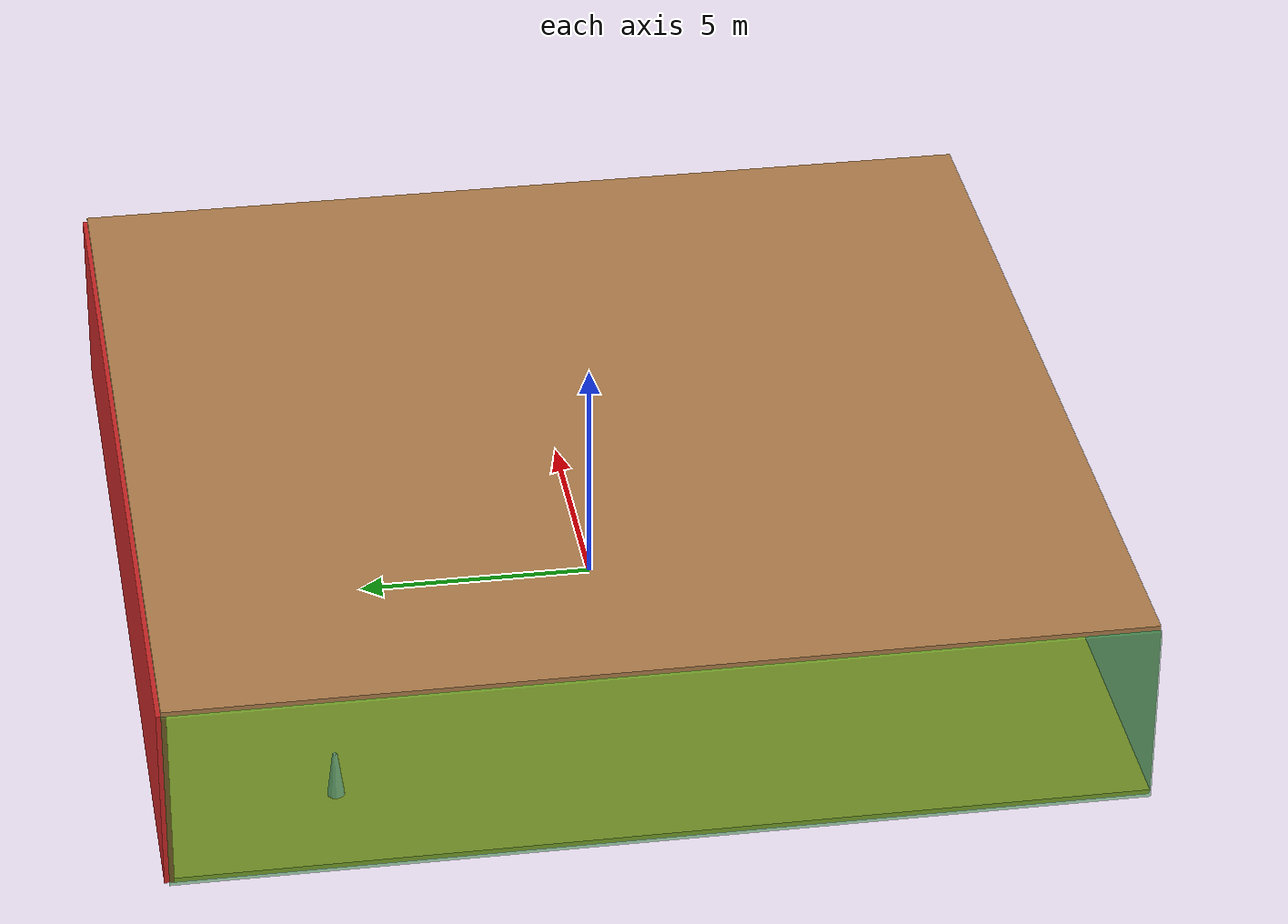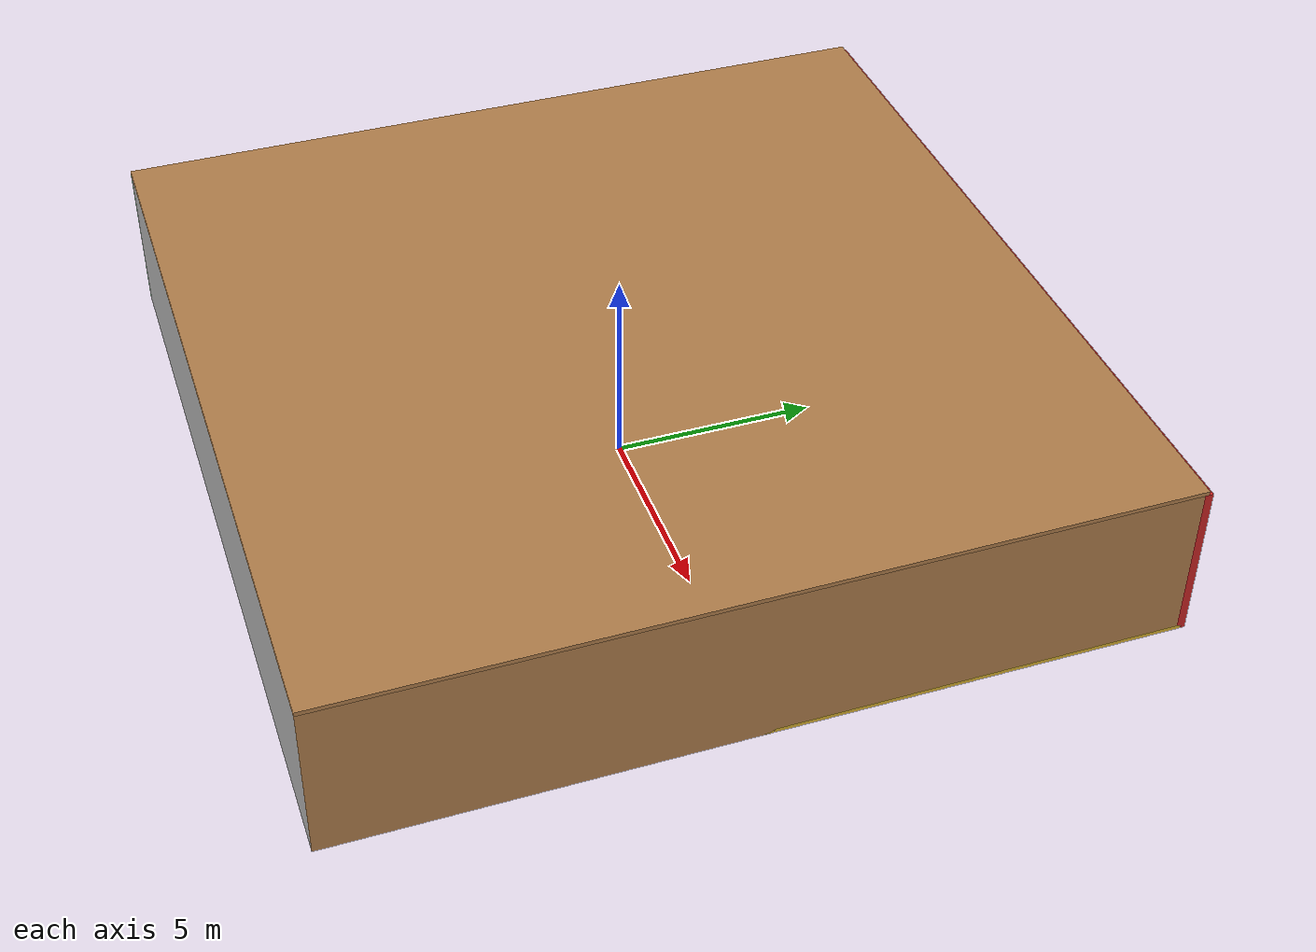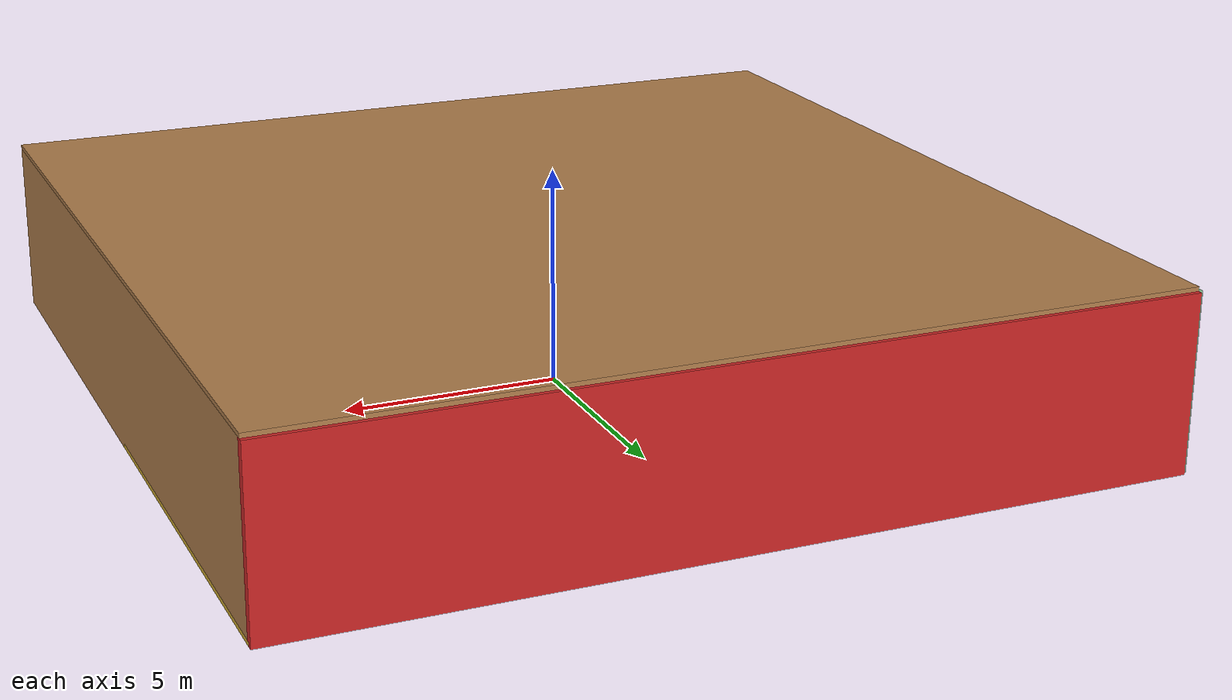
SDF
<sdf version="1.4">
 <world name="default">
  <physics type="ode">
   <max_step_size>0.001</max_step_size>
   <real_time_factor>1</real_time_factor>
   <real_time_update_rate>1000</real_time_update_rate>
   <gravity>0 0 -9.8</gravity>
  </physics>
  <scene><ambient>0.4 0.4 0.4 1</ambient><background>0.7 0.7 0.7 1</background><shadows>1</shadows></scene>
  <model name="Surrounding">
   <static>1</static>
   <link name="Ceiling">
    <collision name="Ceiling_Collision"><geometry><box><size>20 20 0.1</size></box></geometry></collision>
    <visual name="Ceiling_Visual">
     <geometry><box><size>20 20 0.1</size></box></geometry>
     <material>
      <script><uri>file://media/materials/scripts/gazebo.material</uri><name>Gazebo/Wood</name></script>
     </material>
    </visual>
    <pose>0 0 4.05 0 0 0</pose>
   </link>
   <link name="Wall_South">
    <collision name="Wall_South_Collision">
     <geometry><box><size>20 0 4</size></box></geometry>
     <pose>0 0 2 0 -0 0</pose>
    </collision>
    <visual name="Wall_South_Visual">
     <pose>0 0 2 0 -0 0</pose>
     <geometry><box><size>20 0 4</size></box></geometry>
     <material>
      <script><uri>file://media/materials/scripts/gazebo.material</uri><name>Gazebo/Pioneer2Body</name></script>
     </material>
    </visual>
    <velocity_decay><linear>0</linear><angular>0</angular></velocity_decay>
    <pose>0 -10 0 0 -0 0</pose>
   </link>
   <link name="Wall_East">
    <collision name="Wall_21_Collision">
     <geometry><box><size>20 0 4</size></box></geometry>
     <pose>0 0 2 0 -0 0</pose>
    </collision>
    <visual name="Wall_21_Visual">
     <pose>0 0 2 0 -0 0</pose>
     <geometry><box><size>20 0 4</size></box></geometry>
     <material>
      <script><uri>file://media/materials/scripts/gazebo.material</uri><name>Gazebo/WoodFloor</name></script>
     </material>
    </visual>
    <velocity_decay><linear>0</linear><angular>0</angular></velocity_decay>
    <pose>10 0 0 0 -0 1.5708</pose>
   </link>
   <link name="Wall_North">
    <collision name="Wall_22_Collision">
     <geometry><box><size>20 0.2 4</size></box></geometry>
     <pose>0 0 2 0 -0 0</pose>
    </collision>
    <visual name="Wall_22_Visual">
     <pose>0 0 2 0 -0 0</pose>
     <geometry><box><size>20 0.2 4</size></box></geometry>
     <material>
      <script><uri>file://media/materials/scripts/gazebo.material</uri><name>Gazebo/RedBright</name></script>
     </material>
    </visual>
    <velocity_decay><linear>0</linear><angular>0</angular></velocity_decay>
    <pose>0 10 0 0 -0 0</pose>
   </link>
   <link name="Wall_West">
    <collision name="Wall_23_Collision">
     <geometry><box><size>20 0.2 4</size></box></geometry>
     <pose>0 0 2 0 -0 0</pose>
    </collision>
    <visual name="Wall_23_Visual">
     <pose>0 0 2 0 -0 0</pose>
     <geometry><box><size>20 0.2 4</size></box></geometry>
     <material>
      <script><uri>file://media/materials/scripts/gazebo.material</uri><name>Gazebo/GreenTransparent</name></script>
     </material>
    </visual>
    <velocity_decay><linear>0</linear><angular>0</angular></velocity_decay>
    <pose>-10 0 0 0 0 -1.5708</pose>
   </link>
   <link name="Ground_link">
    <collision name="collision">
     <pose>0 0 .05 0 -0 0</pose>
     <geometry><box><size>20 20 0.1</size></box></geometry>
    </collision>
    <visual name="visual">
     <pose>0 0 .05 0 -0 0</pose>
     <geometry><box><size>20 20 0.1</size></box></geometry>
     <material>
      <script><uri>file://media/materials/scripts/gazebo.material</uri><name>Gazebo/Gold</name></script>
     </material>
    </visual>
   </link>
   <static>1</static>
  </model>
  <spherical_coordinates>
   <surface_model>EARTH_WGS84</surface_model>
   <latitude_deg>0</latitude_deg>
   <longitude_deg>0</longitude_deg>
   <elevation>0</elevation>
   <heading_deg>0</heading_deg>
  </spherical_coordinates>
  <light name="lightball_0" type="diffuse">
   <diffuse>0.8 0.8 0.8 1</diffuse>
   <specular>0.2 0.2 0.2 1</specular>
   <attenuation>
    <range>100</range>
    <constant>0.7</constant>
    <linear>0.01</linear>
    <quadratic>0.001</quadratic>
   </attenuation>
   <direction>-0.5 0.1 -0.9</direction>
   <pose>4.9550954184 8.12058212287 1.24291566424 0 0 0</pose>
  </light>
  <light name="lightball_1" type="diffuse">
   <diffuse>0.8 0.8 0.8 1</diffuse>
   <specular>0.2 0.2 0.2 1</specular>
   <attenuation>
    <range>100</range>
    <constant>0.7</constant>
    <linear>0.01</linear>
    <quadratic>0.001</quadratic>
   </attenuation>
   <direction>-0.5 0.1 -0.9</direction>
   <pose>2.53992460085 5.01521462465 2.97570484305 0 0 0</pose>
  </light>
  <light name="lightball_2" type="diffuse">
   <diffuse>0.8 0.8 0.8 1</diffuse>
   <specular>0.2 0.2 0.2 1</specular>
   <attenuation>
    <range>100</range>
    <constant>0.7</constant>
    <linear>0.01</linear>
    <quadratic>0.001</quadratic>
   </attenuation>
   <direction>-0.5 0.1 -0.9</direction>
   <pose>-2.1631805096 -5.25470564176 0.883649877927 0 0 0</pose>
  </light>
  <light name="lightball_3" type="diffuse">
   <diffuse>0.8 0.8 0.8 1</diffuse>
   <specular>0.2 0.2 0.2 1</specular>
   <attenuation>
    <range>100</range>
    <constant>0.7</constant>
    <linear>0.01</linear>
    <quadratic>0.001</quadratic>
   </attenuation>
   <direction>-0.5 0.1 -0.9</direction>
   <pose>7.36416459918 -8.20223295507 1.90510265628 0 0 0</pose>
  </light>
  <light name="lightball_4" type="diffuse">
   <diffuse>0.8 0.8 0.8 1</diffuse>
   <specular>0.2 0.2 0.2 1</specular>
   <attenuation>
    <range>100</range>
    <constant>0.7</constant>
    <linear>0.01</linear>
    <quadratic>0.001</quadratic>
   </attenuation>
   <direction>-0.5 0.1 -0.9</direction>
   <pose>2.98053149891 5.325347314 3.42462585647 0 0 0</pose>
  </light>
  <light name="lightball_5" type="diffuse">
   <diffuse>0.8 0.8 0.8 1</diffuse>
   <specular>0.2 0.2 0.2 1</specular>
   <attenuation>
    <range>100</range>
    <constant>0.7</constant>
    <linear>0.01</linear>
    <quadratic>0.001</quadratic>
   </attenuation>
   <direction>-0.5 0.1 -0.9</direction>
   <pose>-8.88449088006 2.02600604657 2.77535762636 0 0 0</pose>
  </light>
  <light name="lightball_6" type="diffuse">
   <diffuse>0.8 0.8 0.8 1</diffuse>
   <specular>0.2 0.2 0.2 1</specular>
   <attenuation>
    <range>100</range>
    <constant>0.7</constant>
    <linear>0.01</linear>
    <quadratic>0.001</quadratic>
   </attenuation>
   <direction>-0.5 0.1 -0.9</direction>
   <pose>-8.83272265955 -3.76583114684 1.89824032085 0 0 0</pose>
  </light>
  <light name="lightball_7" type="diffuse">
   <diffuse>0.8 0.8 0.8 1</diffuse>
   <specular>0.2 0.2 0.2 1</specular>
   <attenuation>
    <range>100</range>
    <constant>0.7</constant>
    <linear>0.01</linear>
    <quadratic>0.001</quadratic>
   </attenuation>
   <direction>-0.5 0.1 -0.9</direction>
   <pose>-9.97784107025 6.3333949011 2.10250004196 0 0 0</pose>
  </light>
  <light name="lightball_8" type="diffuse">
   <diffuse>0.8 0.8 0.8 1</diffuse>
   <specular>0.2 0.2 0.2 1</specular>
   <attenuation>
    <range>100</range>
    <constant>0.7</constant>
    <linear>0.01</linear>
    <quadratic>0.001</quadratic>
   </attenuation>
   <direction>-0.5 0.1 -0.9</direction>
   <pose>-7.60842574768 -4.81991868196 0.76841770776 0 0 0</pose>
  </light>
  <light name="lightball_9" type="diffuse">
   <diffuse>0.8 0.8 0.8 1</diffuse>
   <specular>0.2 0.2 0.2 1</specular>
   <attenuation>
    <range>100</range>
    <constant>0.7</constant>
    <linear>0.01</linear>
    <quadratic>0.001</quadratic>
   </attenuation>
   <direction>-0.5 0.1 -0.9</direction>
   <pose>8.18940050112 -9.69524910364 3.6951562915 0 0 0</pose>
  </light>
  <light name="lightball_10" type="diffuse">
   <diffuse>0.8 0.8 0.8 1</diffuse>
   <specular>0.2 0.2 0.2 1</specular>
   <attenuation>
    <range>100</range>
    <constant>0.7</constant>
    <linear>0.01</linear>
    <quadratic>0.001</quadratic>
   </attenuation>
   <direction>-0.5 0.1 -0.9</direction>
   <pose>5.02334268482 9.33531171669 2.0638772902 0 0 0</pose>
  </light>
  <light name="lightball_11" type="diffuse">
   <diffuse>0.8 0.8 0.8 1</diffuse>
   <specular>0.2 0.2 0.2 1</specular>
   <attenuation>
    <range>100</range>
    <constant>0.7</constant>
    <linear>0.01</linear>
    <quadratic>0.001</quadratic>
   </attenuation>
   <direction>-0.5 0.1 -0.9</direction>
   <pose>-7.35837130256 -2.35014700688 1.75411585762 0 0 0</pose>
  </light>
  <include>
   <uri>model://construction_cone</uri>
   <pose>-7.618088749 6.39954996463 0 0 0 1.54787445883</pose>
  </include>
  <include>
   <uri>model://construction_cone</uri>
   <pose>-3.94378031401 1.05327508056 0 0 0 0.570758279475</pose>
  </include>
  <include><uri>model://cabinet</uri><pose>-0.69077484363 -7.48202886058 0 0 0 2.94109271768</pose></include>
  <include><uri>model://table</uri><pose>-2.62354120613 -3.73893144332 0 0 0 2.4806132796</pose></include>
  <include><uri>model://cabinet</uri><pose>7.41051221849 -8.45326403794 0 0 0 0.921718768841</pose></include>
  <include>
   <uri>model://robocup_3Dsim_goal</uri>
   <pose>7.91959997101 -1.49700421659 0 0 0 0.805244012921</pose>
  </include>
  <include>
   <uri>model://robocup_3Dsim_goal</uri>
   <pose>7.28345605576 2.1580772414 0 0 0 2.45509218379</pose>
  </include>
  <include>
   <uri>model://construction_cone</uri>
   <pose>8.65815719076 4.52265470402 0 0 0 2.82023154954</pose>
  </include>
 </world>
</sdf>

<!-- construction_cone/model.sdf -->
<sdf version="1.5">
  <model name="Construction Cone">
    <link name="link">
      <collision name="collision">
        <geometry>
          <mesh>
            <scale>10 10 10</scale>
            <uri>file://isr-testbed/construction_cone/meshes/construction_cone.dae</uri>
          </mesh>
        </geometry>
      </collision>
      <visual name="visual">
        <geometry>
          <mesh>
            <scale>10 10 10</scale>
            <uri>file://isr-testbed/construction_cone/meshes/construction_cone.dae</uri>
          </mesh>
        </geometry>
      </visual>
    </link>
  </model>
</sdf>

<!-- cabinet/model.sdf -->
<sdf version="1.5">
  <model name="cabinet">
    <static>true</static>
    <link name="cabinet_bottom_plate">
      <inertial>
        <pose>0 0 -1 0 0 0</pose>
        <inertia>
          <ixx>2.050000</ixx>
          <ixy>0</ixy>
          <ixz>0</ixz>
          <iyy>2.050000</iyy>
          <iyz>0</iyz>
          <izz>2.050000</izz>
        </inertia>
        <mass>25.000000</mass>
      </inertial>
      <collision name="cabinet_bottom_plate_geom">
        <pose>0 0 0.010000 0 0 0</pose>
        <geometry>
          <box>
            <size>0.450000 0.450000 0.020000</size>
          </box>
        </geometry>
      </collision>
      <visual name="cabinet_bottom_plate_geom_visual">
        <pose>0 0 0.010000 0 0 0</pose>
        <geometry>
          <box>
            <size>0.450000 0.450000 0.020000</size>
          </box>
        </geometry>
        <material>
          <script>
            <uri>model://media/materials/scripts/gazebo.material</uri>
            <name>Gazebo/Wood</name>
          </script>
        </material>
      </visual>
      <collision name="cabinet_bottom_plate_geom_cabinet_back_plate">
        <pose>0.235000 0 0.510000 0 0 0</pose>
        <geometry>
          <box>
            <size>0.020000 0.450000 1.020000</size>
          </box>
        </geometry>
      </collision>
      <visual name="cabinet_bottom_plate_geom_cabinet_back_plate_visual">
        <pose>0.235000 0 0.510000 0 0 0</pose>
        <geometry>
          <box>
            <size>0.020000 0.450000 1.020000</size>
          </box>
        </geometry>
        <material>
          <script>
            <uri>model://media/materials/scripts/gazebo.material</uri>
            <name>Gazebo/Wood</name>
          </script>
        </material>
      </visual>
      <collision name="cabinet_bottom_plate_geom_cabinet_left_plate">
        <pose>0 0.235000 0.510000 0 0 0</pose>
        <geometry>
          <box>
            <size>0.450000 0.020000 1.020000</size>
          </box>
        </geometry>
      </collision>
      <visual name="cabinet_bottom_plate_geom_cabinet_left_plate_visual">
        <pose>0 0.235000 0.510000 0 0 0</pose>
        <geometry>
          <box>
            <size>0.450000 0.020000 1.020000</size>
          </box>
        </geometry>
        <material>
          <script>
            <uri>model://media/materials/scripts/gazebo.material</uri>
            <name>Gazebo/Wood</name>
          </script>
        </material>
      </visual>
      <collision name="cabinet_bottom_plate_geom_cabinet_middle_plate">
        <pose>0 0 0.510000 0 0 0</pose>
        <geometry>
          <box>
            <size>0.450000 0.450000 0.020000</size>
          </box>
        </geometry>
      </collision>
      <visual name="cabinet_bottom_plate_geom_cabinet_middle_plate_visual">
        <pose>0 0 0.510000 0 0 0</pose>
        <geometry>
          <box>
            <size>0.450000 0.450000 0.020000</size>
          </box>
        </geometry>
        <material>
          <script>
            <uri>model://media/materials/scripts/gazebo.material</uri>
            <name>Gazebo/Wood</name>
          </script>
        </material>
      </visual>
      <collision name="cabinet_bottom_plate_geom_cabinet_right_plate">
        <pose>0 -0.235000 0.510000 0 0 0</pose>
        <geometry>
          <box>
            <size>0.450000 0.020000 1.020000</size>
          </box>
        </geometry>
      </collision>
      <visual name="cabinet_bottom_plate_geom_cabinet_right_plate_visual">
        <pose>0 -0.235000 0.510000 0 0 0</pose>
        <geometry>
          <box>
            <size>0.450000 0.020000 1.020000</size>
          </box>
        </geometry>
        <material>
          <script>
            <uri>model://media/materials/scripts/gazebo.material</uri>
            <name>Gazebo/Wood</name>
          </script>
        </material>
      </visual>
      <collision name="cabinet_bottom_plate_geom_cabinet_top_plate">
        <pose>0 0 1.010000 0 0 0</pose>
        <geometry>
          <box>
            <size>0.450000 0.450000 0.020000</size>
          </box>
        </geometry>
      </collision>
      <visual name="cabinet_bottom_plate_geom_cabinet_top_plate_visual">
        <pose>0 0 1.010000 0 0 0</pose>
        <geometry>
          <box>
            <size>0.450000 0.450000 0.020000</size>
          </box>
        </geometry>
        <material>
          <script>
            <uri>model://media/materials/scripts/gazebo.material</uri>
            <name>Gazebo/Wood</name>
          </script>
        </material>
      </visual>
    </link>
  </model>
</sdf>

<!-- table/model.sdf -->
<sdf version="1.5">
  <model name="table">
    <static>true</static>
    <link name="link">
      <collision name="surface">
        <pose>0 0 1.0 0 0 0</pose>
        <geometry>
          <box>
            <size>1.5 0.8 0.03</size>
          </box>
        </geometry>
        <surface>
          <friction>
            <ode>
              <mu>0.6</mu>
              <mu2>0.6</mu2>
            </ode>
          </friction>
        </surface>
      </collision>
      <visual name="visual1">
        <pose>0 0 1.0 0 0 0</pose>
        <geometry>
          <box>
            <size>1.5 0.8 0.03</size>
          </box>
        </geometry>
        <material>
          <script>
            <uri>model://media/materials/scripts/gazebo.material</uri>
            <name>Gazebo/Wood</name>
          </script>
        </material>
      </visual>
      <collision name="front_left_leg">
        <pose>0.68 0.38 0.5 0 0 0</pose>
        <geometry>
          <cylinder>
            <radius>0.02</radius>
            <length>1.0</length>
          </cylinder>
        </geometry>
      </collision>
      <visual name="front_left_leg">
        <pose>0.68 0.38 0.5 0 0 0</pose>
        <geometry>
          <cylinder>
            <radius>0.02</radius>
            <length>1.0</length>
          </cylinder>
        </geometry>
        <material>
          <script>
            <uri>model://media/materials/scripts/gazebo.material</uri>
            <name>Gazebo/Grey</name>
          </script>
        </material>
      </visual>
      <collision name="front_right_leg">
        <pose>0.68 -0.38 0.5 0 0 0</pose>
        <geometry>
          <cylinder>
            <radius>0.02</radius>
            <length>1.0</length>
          </cylinder>
        </geometry>
      </collision>
      <visual name="front_right_leg">
        <pose>0.68 -0.38 0.5 0 0 0</pose>
        <geometry>
          <cylinder>
            <radius>0.02</radius>
            <length>1.0</length>
          </cylinder>
        </geometry>
        <material>
          <script>
            <uri>model://media/materials/scripts/gazebo.material</uri>
            <name>Gazebo/Grey</name>
          </script>
        </material>
      </visual>
      <collision name="back_right_leg">
        <pose>-0.68 -0.38 0.5 0 0 0</pose>
        <geometry>
          <cylinder>
            <radius>0.02</radius>
            <length>1.0</length>
          </cylinder>
        </geometry>
      </collision>
      <visual name="back_right_leg">
        <pose>-0.68 -0.38 0.5 0 0 0</pose>
        <geometry>
          <cylinder>
            <radius>0.02</radius>
            <length>1.0</length>
          </cylinder>
        </geometry>
        <material>
          <script>
            <uri>model://media/materials/scripts/gazebo.material</uri>
            <name>Gazebo/Grey</name>
          </script>
        </material>
      </visual>
      <collision name="back_left_leg">
        <pose>-0.68 0.38 0.5 0 0 0</pose>
        <geometry>
          <cylinder>
            <radius>0.02</radius>
            <length>1.0</length>
          </cylinder>
        </geometry>
      </collision>
      <visual name="back_left_leg">
        <pose>-0.68 0.38 0.5 0 0 0</pose>
        <geometry>
          <cylinder>
            <radius>0.02</radius>
            <length>1.0</length>
          </cylinder>
        </geometry>
        <material>
          <script>
            <uri>model://media/materials/scripts/gazebo.material</uri>
            <name>Gazebo/Grey</name>
          </script>
        </material>
      </visual>
    </link>
  </model>
</sdf>

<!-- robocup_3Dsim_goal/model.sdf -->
<sdf version="1.5">
  <model name="robocup_3d_goal">
    <static>true</static>
    <link name="left_post">
      <pose>0 1.05 0.45 0 0 0</pose>
      <collision name="collision">
        <geometry>
          <cylinder>
            <radius>0.05</radius>
            <length>0.9</length>
          </cylinder>
        </geometry>
      </collision>
      <visual name="visual">
        <geometry>
          <cylinder>
            <radius>0.05</radius>
            <length>0.9</length>
          </cylinder>
        </geometry>
        <material>
          <script>
            <uri>file://media/materials/scripts/gazebo.material</uri>
            <name>Gazebo/ZincYellow</name>
          </script>
        </material>
      </visual>
    </link>
    <link name="left_support_horiz_lower">
      <pose>0.30 1.05 0.01 0 0 0</pose>
      <collision name="collision">
        <geometry>
          <box>
            <size>0.50 0.02 0.02</size>
          </box>
        </geometry>
      </collision>
      <visual name="visual">
        <geometry>
          <box>
            <size>0.50 0.02 0.02</size>
          </box>
        </geometry>
        <material>
          <script>
            <uri>file://media/materials/scripts/gazebo.material</uri>
            <name>Gazebo/White</name>
          </script>
        </material>
      </visual>
    </link>
    <link name="left_support_horiz_upper">
      <pose>0.30 1.05 0.79 0 0 0</pose>
      <collision name="collision">
        <geometry>
          <box>
            <size>0.50 0.02 0.02</size>
          </box>
        </geometry>
      </collision>
      <visual name="visual">
        <geometry>
          <box>
            <size>0.50 0.02 0.02</size>
          </box>
        </geometry>
        <material>
          <script>
            <uri>file://media/materials/scripts/gazebo.material</uri>
            <name>Gazebo/White</name>
          </script>
        </material>
      </visual>
    </link>
    <link name="left_support_vertical">
      <pose>0.56 1.05 0.4 0 1.5708 0</pose>
      <collision name="collision">
        <geometry>
          <box>
            <size>0.80 0.02 0.02</size>
          </box>
        </geometry>
      </collision>
      <visual name="visual">
        <geometry>
          <box>
            <size>0.80 0.02 0.02</size>
          </box>
        </geometry>
        <material>
          <script>
            <uri>file://media/materials/scripts/gazebo.material</uri>
            <name>Gazebo/White</name>
          </script>
        </material>
      </visual>
    </link>
    <link name="right_support_horiz_lower">
      <pose>0.30 -1.05 0.01 0 0 0</pose>
      <collision name="collision">
        <geometry>
          <box>
            <size>0.50 0.02 0.02</size>
          </box>
        </geometry>
      </collision>
      <visual name="visual">
        <geometry>
          <box>
            <size>0.50 0.02 0.02</size>
          </box>
        </geometry>
        <material>
          <script>
            <uri>file://media/materials/scripts/gazebo.material</uri>
            <name>Gazebo/White</name>
          </script>
        </material>
      </visual>
    </link>
    <link name="right_support_horiz_upper">
      <pose>0.30 -1.05 0.79 0 0 0</pose>
      <collision name="collision">
        <geometry>
          <box>
            <size>0.50 0.02 0.02</size>
          </box>
        </geometry>
      </collision>
      <visual name="visual">
        <geometry>
          <box>
            <size>0.50 0.02 0.02</size>
          </box>
        </geometry>
        <material>
          <script>
            <uri>file://media/materials/scripts/gazebo.material</uri>
            <name>Gazebo/White</name>
          </script>
        </material>
      </visual>
    </link>
    <link name="right_support_vertical">
      <pose>0.56 -1.05 0.4 0 1.5708 0</pose>
      <collision name="collision">
        <geometry>
          <box>
            <size>0.80 0.02 0.02</size>
          </box>
        </geometry>
      </collision>
      <visual name="visual">
        <geometry>
          <box>
            <size>0.80 0.02 0.02</size>
          </box>
        </geometry>
        <material>
          <script>
            <uri>file://media/materials/scripts/gazebo.material</uri>
            <name>Gazebo/White</name>
          </script>
        </material>
      </visual>
    </link>
    <link name="center_support_horiz_lower">
      <pose>0.56 0 0.01 0 1.5708 0</pose>
      <collision name="collision">
        <geometry>
          <box>
            <size>0.02 2.08 0.02</size>
          </box>
        </geometry>
      </collision>
      <visual name="visual">
        <geometry>
          <box>
            <size>0.02 2.08 0.02</size>
          </box>
        </geometry>
        <material>
          <script>
            <uri>file://media/materials/scripts/gazebo.material</uri>
            <name>Gazebo/White</name>
          </script>
        </material>
      </visual>
    </link>
    <link name="center_support_horiz_upper">
      <pose>0.56 0 0.79 0 1.5708 0</pose>
      <collision name="collision">
        <geometry>
          <box>
            <size>0.02 2.08 0.02</size>
          </box>
        </geometry>
      </collision>
      <visual name="visual">
        <geometry>
          <box>
            <size>0.02 2.08 0.02</size>
          </box>
        </geometry>
        <material>
          <script>
            <uri>file://media/materials/scripts/gazebo.material</uri>
            <name>Gazebo/White</name>
          </script>
        </material>
      </visual>
    </link>
    <link name="right_post">
      <pose>0 -1.05 0.45 0 0 0</pose>
      <collision name="collision">
        <geometry>
          <cylinder>
            <radius>0.05</radius>
            <length>0.9</length>
          </cylinder>
        </geometry>
      </collision>
      <visual name="visual">
        <geometry>
          <cylinder>
            <radius>0.05</radius>
            <length>0.9</length>
          </cylinder>
        </geometry>
        <material>
          <script>
            <uri>file://media/materials/scripts/gazebo.material</uri>
            <name>Gazebo/ZincYellow</name>
          </script>
        </material>
      </visual>
    </link>
    <link name="crossbar">
      <pose>0 0 0.85 1.57 1.57 0</pose>
      <collision name="collision">
        <geometry>
          <cylinder>
            <radius>0.05</radius>
            <length>2.0</length>
          </cylinder>
        </geometry>
      </collision>
      <visual name="visual">
        <geometry>
          <cylinder>
            <radius>0.05</radius>
            <length>2.0</length>
          </cylinder>
        </geometry>
        <material>
          <script>
            <uri>file://media/materials/scripts/gazebo.material</uri>
            <name>Gazebo/ZincYellow</name>
          </script>
        </material>
      </visual>
    </link>
    <link name="center_net">
      <pose>0.56 0 0.40 0 0 0</pose>
      <collision name="collision">
        <geometry>
          <box>
            <size>0.01 2.1 0.80</size>
          </box>
        </geometry>
      </collision>
      <visual name="visual">
        <geometry>
          <box>
            <size>0.01 2.1 0.80</size>
          </box>
        </geometry>
        <material>
          <script>
            <uri>model://../model_source/models/robocup09_spl_field/materials/scripts/</uri>
            <uri>model://../model_source/models/robocup09_spl_field/materials/textures/</uri>
            <name>RoboCup/Net</name>
          </script>
        </material>
      </visual>
    </link>
    <link name="left_net">
      <pose>0.30 1.05 0.40 0 0 0</pose>
      <collision name="collision">
        <geometry>
          <box>
            <size>0.50 0.01 0.76</size>
          </box>
        </geometry>
      </collision>
      <visual name="visual">
        <geometry>
          <box>
            <size>0.50 0.01 0.76</size>
          </box>
        </geometry>
        <material>
          <script>
            <uri>model://../model_source/models/robocup09_spl_field/materials/scripts/</uri>
            <uri>model://../model_source/models/robocup09_spl_field/materials/textures/</uri>
            <name>RoboCup/Net</name>
          </script>
        </material>
      </visual>
    </link>
    <link name="right_net">
      <pose>0.30 -1.05 0.40 0 0 0</pose>
      <collision name="collision">
        <geometry>
          <box>
            <size>0.50 0.01 0.76</size>
          </box>
        </geometry>
      </collision>
      <visual name="visual">
        <geometry>
          <box>
            <size>0.50 0.01 0.76</size>
          </box>
        </geometry>
        <material>
          <script>
            <uri>model://../model_source/models/robocup09_spl_field/materials/scripts/</uri>
            <uri>model://../model_source/models/robocup09_spl_field/materials/textures/</uri>
            <name>RoboCup/Net</name>
          </script>
        </material>
      </visual>
    </link>
  </model>
</sdf>
